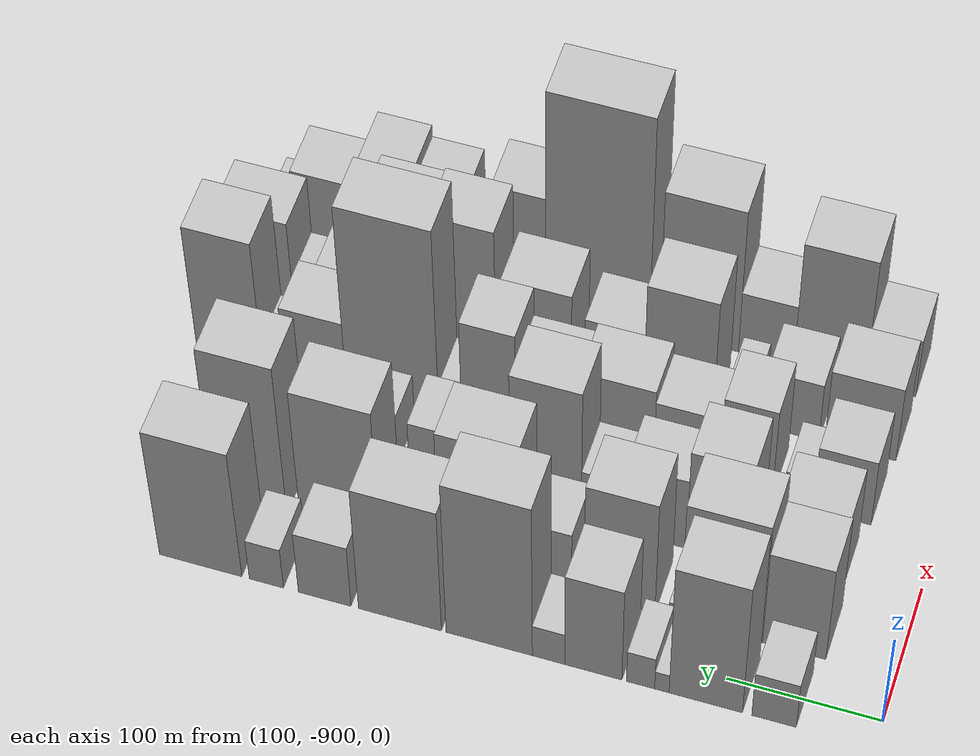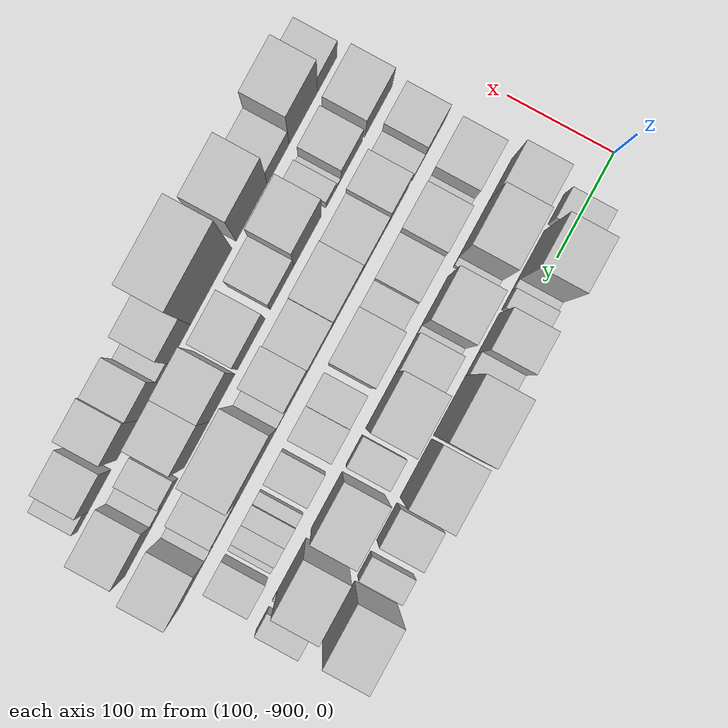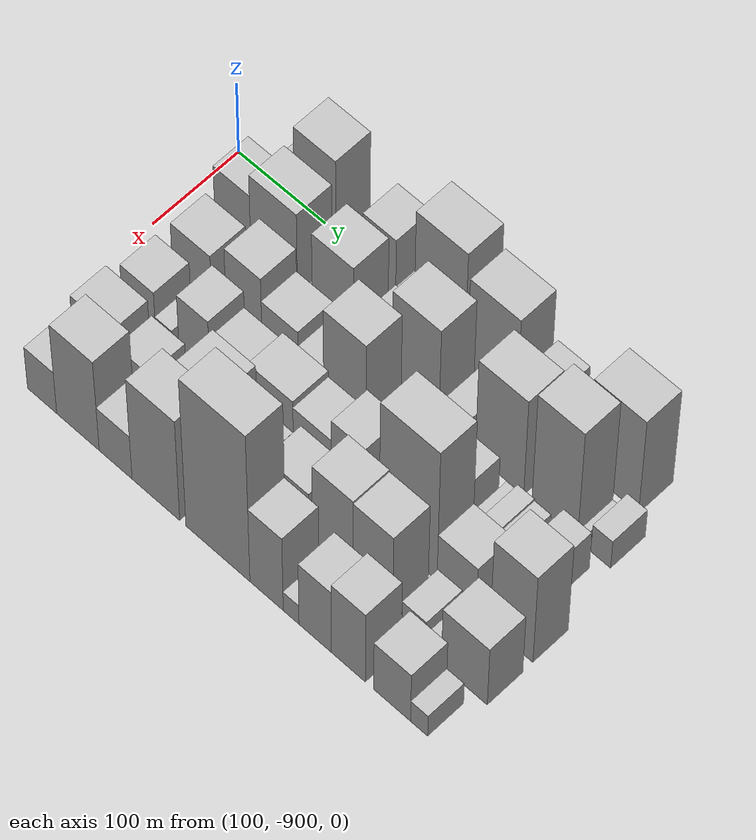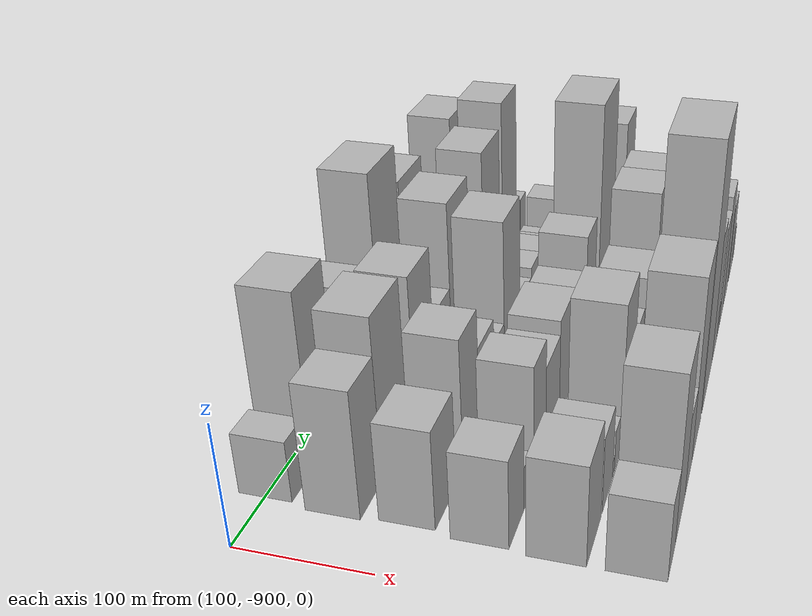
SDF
<sdf version="1.6">
 <world name="default">
  <model name="building_1">
   <static>1</static>
   <pose>100.0000 -835.7640 0 0.000000 0.000000 0.000000</pose>
   <link name="link">
    <pose>0 0 25.50 0 0 0</pose>
    <collision name="collision"><geometry><box><size>40.0000 28.4719 51.0000</size></box></geometry></collision>
    <visual name="visual">
     <cast_shadows>0</cast_shadows>
     <geometry><box><size>40.0000 28.4719 51.0000</size></box></geometry>
     <material>
      <script>
       <uri>model://HANNAS_wall/materials/scripts</uri>
       <uri>model://HANNAS_wall/materials/textures</uri>
       <name>vrc/HANNAS_wall</name>
      </script>
     </material>
    </visual>
   </link>
  </model>
  <model name="building_2">
   <static>1</static>
   <pose>100.0000 -791.8848 0 0.000000 0.000000 0.000000</pose>
   <link name="link">
    <pose>0 0 73.50 0 0 0</pose>
    <collision name="collision"><geometry><box><size>40.0000 47.2866 147.0000</size></box></geometry></collision>
    <visual name="visual">
     <cast_shadows>0</cast_shadows>
     <geometry><box><size>40.0000 47.2866 147.0000</size></box></geometry>
     <material>
      <script>
       <uri>model://HANNAS_wall/materials/scripts</uri>
       <uri>model://HANNAS_wall/materials/textures</uri>
       <name>vrc/HANNAS_wall</name>
      </script>
     </material>
    </visual>
   </link>
  </model>
  <model name="building_3">
   <static>1</static>
   <pose>100.0000 -763.5734 0 0.000000 0.000000 0.000000</pose>
   <link name="link">
    <pose>0 0 10.50 0 0 0</pose>
    <collision name="collision"><geometry><box><size>40.0000 9.3361 21.0000</size></box></geometry></collision>
    <visual name="visual">
     <cast_shadows>0</cast_shadows>
     <geometry><box><size>40.0000 9.3361 21.0000</size></box></geometry>
     <material>
      <script>
       <uri>model://HANNAS_wall/materials/scripts</uri>
       <uri>model://HANNAS_wall/materials/textures</uri>
       <name>vrc/HANNAS_wall</name>
      </script>
     </material>
    </visual>
   </link>
  </model>
  <model name="building_4">
   <static>1</static>
   <pose>100.0000 -749.7847 0 0.000000 0.000000 0.000000</pose>
   <link name="link">
    <pose>0 0 18.00 0 0 0</pose>
    <collision name="collision"><geometry><box><size>40.0000 18.2413 36.0000</size></box></geometry></collision>
    <visual name="visual">
     <cast_shadows>0</cast_shadows>
     <geometry><box><size>40.0000 18.2413 36.0000</size></box></geometry>
     <material>
      <script>
       <uri>model://HANNAS_wall/materials/scripts</uri>
       <uri>model://HANNAS_wall/materials/textures</uri>
       <name>vrc/HANNAS_wall</name>
      </script>
     </material>
    </visual>
   </link>
  </model>
  <model name="building_5">
   <static>1</static>
   <pose>100.0000 -719.0016 0 0.000000 0.000000 0.000000</pose>
   <link name="link">
    <pose>0 0 52.50 0 0 0</pose>
    <collision name="collision"><geometry><box><size>40.0000 37.3249 105.0000</size></box></geometry></collision>
    <visual name="visual">
     <cast_shadows>0</cast_shadows>
     <geometry><box><size>40.0000 37.3249 105.0000</size></box></geometry>
     <material>
      <script>
       <uri>model://HANNAS_wall/materials/scripts</uri>
       <uri>model://HANNAS_wall/materials/textures</uri>
       <name>vrc/HANNAS_wall</name>
      </script>
     </material>
    </visual>
   </link>
  </model>
  <model name="building_6">
   <static>1</static>
   <pose>100.0000 -689.7990 0 0.000000 0.000000 0.000000</pose>
   <link name="link">
    <pose>0 0 18.00 0 0 0</pose>
    <collision name="collision"><geometry><box><size>40.0000 21.0802 36.0000</size></box></geometry></collision>
    <visual name="visual">
     <cast_shadows>0</cast_shadows>
     <geometry><box><size>40.0000 21.0802 36.0000</size></box></geometry>
     <material>
      <script>
       <uri>model://HANNAS_wall/materials/scripts</uri>
       <uri>model://HANNAS_wall/materials/textures</uri>
       <name>vrc/HANNAS_wall</name>
      </script>
     </material>
    </visual>
   </link>
  </model>
  <model name="building_7">
   <static>1</static>
   <pose>100.0000 -650.8711 0 0.000000 0.000000 0.000000</pose>
   <link name="link">
    <pose>0 0 85.50 0 0 0</pose>
    <collision name="collision"><geometry><box><size>40.0000 56.7756 171.0000</size></box></geometry></collision>
    <visual name="visual">
     <cast_shadows>0</cast_shadows>
     <geometry><box><size>40.0000 56.7756 171.0000</size></box></geometry>
     <material>
      <script>
       <uri>model://HANNAS_wall/materials/scripts</uri>
       <uri>model://HANNAS_wall/materials/textures</uri>
       <name>vrc/HANNAS_wall</name>
      </script>
     </material>
    </visual>
   </link>
  </model>
  <model name="building_8">
   <static>1</static>
   <pose>100.0000 -591.9886 0 0.000000 0.000000 0.000000</pose>
   <link name="link">
    <pose>0 0 69.00 0 0 0</pose>
    <collision name="collision"><geometry><box><size>40.0000 54.9893 138.0000</size></box></geometry></collision>
    <visual name="visual">
     <cast_shadows>0</cast_shadows>
     <geometry><box><size>40.0000 54.9893 138.0000</size></box></geometry>
     <material>
      <script>
       <uri>model://HANNAS_wall/materials/scripts</uri>
       <uri>model://HANNAS_wall/materials/textures</uri>
       <name>vrc/HANNAS_wall</name>
      </script>
     </material>
    </visual>
   </link>
  </model>
  <model name="building_9">
   <static>1</static>
   <pose>100.0000 -541.9418 0 0.000000 0.000000 0.000000</pose>
   <link name="link">
    <pose>0 0 34.50 0 0 0</pose>
    <collision name="collision"><geometry><box><size>40.0000 35.1044 69.0000</size></box></geometry></collision>
    <visual name="visual">
     <cast_shadows>0</cast_shadows>
     <geometry><box><size>40.0000 35.1044 69.0000</size></box></geometry>
     <material>
      <script>
       <uri>model://HANNAS_wall/materials/scripts</uri>
       <uri>model://HANNAS_wall/materials/textures</uri>
       <name>vrc/HANNAS_wall</name>
      </script>
     </material>
    </visual>
   </link>
  </model>
  <model name="building_10">
   <static>1</static>
   <pose>100.0000 -502.9221 0 0.000000 0.000000 0.000000</pose>
   <link name="link">
    <pose>0 0 22.50 0 0 0</pose>
    <collision name="collision"><geometry><box><size>40.0000 22.9349 45.0000</size></box></geometry></collision>
    <visual name="visual">
     <cast_shadows>0</cast_shadows>
     <geometry><box><size>40.0000 22.9349 45.0000</size></box></geometry>
     <material>
      <script>
       <uri>model://HANNAS_wall/materials/scripts</uri>
       <uri>model://HANNAS_wall/materials/textures</uri>
       <name>vrc/HANNAS_wall</name>
      </script>
     </material>
    </visual>
   </link>
  </model>
  <model name="building_11">
   <static>1</static>
   <pose>100.0000 -458.6440 0 0.000000 0.000000 0.000000</pose>
   <link name="link">
    <pose>0 0 70.50 0 0 0</pose>
    <collision name="collision"><geometry><box><size>40.0000 55.6212 141.0000</size></box></geometry></collision>
    <visual name="visual">
     <cast_shadows>0</cast_shadows>
     <geometry><box><size>40.0000 55.6212 141.0000</size></box></geometry>
     <material>
      <script>
       <uri>model://HANNAS_wall/materials/scripts</uri>
       <uri>model://HANNAS_wall/materials/textures</uri>
       <name>vrc/HANNAS_wall</name>
      </script>
     </material>
    </visual>
   </link>
  </model>
  <model name="building_50">
   <static>1</static>
   <pose>152.0000 -834.4428 0 0.000000 0.000000 0.000000</pose>
   <link name="link">
    <pose>0 0 52.50 0 0 0</pose>
    <collision name="collision"><geometry><box><size>40.0000 41.1144 105.0000</size></box></geometry></collision>
    <visual name="visual">
     <cast_shadows>0</cast_shadows>
     <geometry><box><size>40.0000 41.1144 105.0000</size></box></geometry>
     <material>
      <script>
       <uri>model://HANNAS_wall/materials/scripts</uri>
       <uri>model://HANNAS_wall/materials/textures</uri>
       <name>vrc/HANNAS_wall</name>
      </script>
     </material>
    </visual>
   </link>
  </model>
  <model name="building_51">
   <static>1</static>
   <pose>152.0000 -787.2116 0 0.000000 0.000000 0.000000</pose>
   <link name="link">
    <pose>0 0 67.50 0 0 0</pose>
    <collision name="collision"><geometry><box><size>40.0000 53.3479 135.0000</size></box></geometry></collision>
    <visual name="visual">
     <cast_shadows>0</cast_shadows>
     <geometry><box><size>40.0000 53.3479 135.0000</size></box></geometry>
     <material>
      <script>
       <uri>model://HANNAS_wall/materials/scripts</uri>
       <uri>model://HANNAS_wall/materials/textures</uri>
       <name>vrc/HANNAS_wall</name>
      </script>
     </material>
    </visual>
   </link>
  </model>
  <model name="building_52">
   <static>1</static>
   <pose>152.0000 -756.6279 0 0.000000 0.000000 0.000000</pose>
   <link name="link">
    <pose>0 0 9.00 0 0 0</pose>
    <collision name="collision"><geometry><box><size>40.0000 7.8196 18.0000</size></box></geometry></collision>
    <visual name="visual">
     <cast_shadows>0</cast_shadows>
     <geometry><box><size>40.0000 7.8196 18.0000</size></box></geometry>
     <material>
      <script>
       <uri>model://HANNAS_wall/materials/scripts</uri>
       <uri>model://HANNAS_wall/materials/textures</uri>
       <name>vrc/HANNAS_wall</name>
      </script>
     </material>
    </visual>
   </link>
  </model>
  <model name="building_53">
   <static>1</static>
   <pose>152.0000 -720.3951 0 0.000000 0.000000 0.000000</pose>
   <link name="link">
    <pose>0 0 63.00 0 0 0</pose>
    <collision name="collision"><geometry><box><size>40.0000 46.6460 126.0000</size></box></geometry></collision>
    <visual name="visual">
     <cast_shadows>0</cast_shadows>
     <geometry><box><size>40.0000 46.6460 126.0000</size></box></geometry>
     <material>
      <script>
       <uri>model://HANNAS_wall/materials/scripts</uri>
       <uri>model://HANNAS_wall/materials/textures</uri>
       <name>vrc/HANNAS_wall</name>
      </script>
     </material>
    </visual>
   </link>
  </model>
  <model name="building_54">
   <static>1</static>
   <pose>152.0000 -692.8880 0 0.000000 0.000000 0.000000</pose>
   <link name="link">
    <pose>0 0 9.00 0 0 0</pose>
    <collision name="collision"><geometry><box><size>40.0000 8.3680 18.0000</size></box></geometry></collision>
    <visual name="visual">
     <cast_shadows>0</cast_shadows>
     <geometry><box><size>40.0000 8.3680 18.0000</size></box></geometry>
     <material>
      <script>
       <uri>model://HANNAS_wall/materials/scripts</uri>
       <uri>model://HANNAS_wall/materials/textures</uri>
       <name>vrc/HANNAS_wall</name>
      </script>
     </material>
    </visual>
   </link>
  </model>
  <model name="building_55">
   <static>1</static>
   <pose>152.0000 -671.2183 0 0.000000 0.000000 0.000000</pose>
   <link name="link">
    <pose>0 0 33.00 0 0 0</pose>
    <collision name="collision"><geometry><box><size>40.0000 34.9714 66.0000</size></box></geometry></collision>
    <visual name="visual">
     <cast_shadows>0</cast_shadows>
     <geometry><box><size>40.0000 34.9714 66.0000</size></box></geometry>
     <material>
      <script>
       <uri>model://HANNAS_wall/materials/scripts</uri>
       <uri>model://HANNAS_wall/materials/textures</uri>
       <name>vrc/HANNAS_wall</name>
      </script>
     </material>
    </visual>
   </link>
  </model>
  <model name="building_56">
   <static>1</static>
   <pose>152.0000 -627.3298 0 0.000000 0.000000 0.000000</pose>
   <link name="link">
    <pose>0 0 70.50 0 0 0</pose>
    <collision name="collision"><geometry><box><size>40.0000 52.8056 141.0000</size></box></geometry></collision>
    <visual name="visual">
     <cast_shadows>0</cast_shadows>
     <geometry><box><size>40.0000 52.8056 141.0000</size></box></geometry>
     <material>
      <script>
       <uri>model://HANNAS_wall/materials/scripts</uri>
       <uri>model://HANNAS_wall/materials/textures</uri>
       <name>vrc/HANNAS_wall</name>
      </script>
     </material>
    </visual>
   </link>
  </model>
  <model name="building_57">
   <static>1</static>
   <pose>152.0000 -580.7093 0 0.000000 0.000000 0.000000</pose>
   <link name="link">
    <pose>0 0 24.00 0 0 0</pose>
    <collision name="collision"><geometry><box><size>40.0000 28.4353 48.0000</size></box></geometry></collision>
    <visual name="visual">
     <cast_shadows>0</cast_shadows>
     <geometry><box><size>40.0000 28.4353 48.0000</size></box></geometry>
     <material>
      <script>
       <uri>model://HANNAS_wall/materials/scripts</uri>
       <uri>model://HANNAS_wall/materials/textures</uri>
       <name>vrc/HANNAS_wall</name>
      </script>
     </material>
    </visual>
   </link>
  </model>
  <model name="building_58">
   <static>1</static>
   <pose>152.0000 -533.8297 0 0.000000 0.000000 0.000000</pose>
   <link name="link">
    <pose>0 0 72.00 0 0 0</pose>
    <collision name="collision"><geometry><box><size>40.0000 53.3240 144.0000</size></box></geometry></collision>
    <visual name="visual">
     <cast_shadows>0</cast_shadows>
     <geometry><box><size>40.0000 53.3240 144.0000</size></box></geometry>
     <material>
      <script>
       <uri>model://HANNAS_wall/materials/scripts</uri>
       <uri>model://HANNAS_wall/materials/textures</uri>
       <name>vrc/HANNAS_wall</name>
      </script>
     </material>
    </visual>
   </link>
  </model>
  <model name="building_59">
   <static>1</static>
   <pose>152.0000 -473.2802 0 0.000000 0.000000 0.000000</pose>
   <link name="link">
    <pose>0 0 82.50 0 0 0</pose>
    <collision name="collision"><geometry><box><size>40.0000 49.7751 165.0000</size></box></geometry></collision>
    <visual name="visual">
     <cast_shadows>0</cast_shadows>
     <geometry><box><size>40.0000 49.7751 165.0000</size></box></geometry>
     <material>
      <script>
       <uri>model://HANNAS_wall/materials/scripts</uri>
       <uri>model://HANNAS_wall/materials/textures</uri>
       <name>vrc/HANNAS_wall</name>
      </script>
     </material>
    </visual>
   </link>
  </model>
  <model name="building_60">
   <static>1</static>
   <pose>152.0000 -444.7053 0 0.000000 0.000000 0.000000</pose>
   <link name="link">
    <pose>0 0 7.50 0 0 0</pose>
    <collision name="collision"><geometry><box><size>40.0000 7.3747 15.0000</size></box></geometry></collision>
    <visual name="visual">
     <cast_shadows>0</cast_shadows>
     <geometry><box><size>40.0000 7.3747 15.0000</size></box></geometry>
     <material>
      <script>
       <uri>model://HANNAS_wall/materials/scripts</uri>
       <uri>model://HANNAS_wall/materials/textures</uri>
       <name>vrc/HANNAS_wall</name>
      </script>
     </material>
    </visual>
   </link>
  </model>
  <model name="building_61">
   <static>1</static>
   <pose>152.0000 -423.2872 0 0.000000 0.000000 0.000000</pose>
   <link name="link">
    <pose>0 0 21.00 0 0 0</pose>
    <collision name="collision"><geometry><box><size>40.0000 21.4614 42.0000</size></box></geometry></collision>
    <visual name="visual">
     <cast_shadows>0</cast_shadows>
     <geometry><box><size>40.0000 21.4614 42.0000</size></box></geometry>
     <material>
      <script>
       <uri>model://HANNAS_wall/materials/scripts</uri>
       <uri>model://HANNAS_wall/materials/textures</uri>
       <name>vrc/HANNAS_wall</name>
      </script>
     </material>
    </visual>
   </link>
  </model>
  <model name="building_101">
   <static>1</static>
   <pose>204.0000 -829.4311 0 0.000000 0.000000 0.000000</pose>
   <link name="link">
    <pose>0 0 40.50 0 0 0</pose>
    <collision name="collision"><geometry><box><size>40.0000 45.1378 81.0000</size></box></geometry></collision>
    <visual name="visual">
     <cast_shadows>0</cast_shadows>
     <geometry><box><size>40.0000 45.1378 81.0000</size></box></geometry>
     <material>
      <script>
       <uri>model://HANNAS_wall/materials/scripts</uri>
       <uri>model://HANNAS_wall/materials/textures</uri>
       <name>vrc/HANNAS_wall</name>
      </script>
     </material>
    </visual>
   </link>
  </model>
  <model name="building_102">
   <static>1</static>
   <pose>204.0000 -798.4260 0 0.000000 0.000000 0.000000</pose>
   <link name="link">
    <pose>0 0 15.00 0 0 0</pose>
    <collision name="collision"><geometry><box><size>40.0000 16.8722 30.0000</size></box></geometry></collision>
    <visual name="visual">
     <cast_shadows>0</cast_shadows>
     <geometry><box><size>40.0000 16.8722 30.0000</size></box></geometry>
     <material>
      <script>
       <uri>model://HANNAS_wall/materials/scripts</uri>
       <uri>model://HANNAS_wall/materials/textures</uri>
       <name>vrc/HANNAS_wall</name>
      </script>
     </material>
    </visual>
   </link>
  </model>
  <model name="building_103">
   <static>1</static>
   <pose>204.0000 -769.5435 0 0.000000 0.000000 0.000000</pose>
   <link name="link">
    <pose>0 0 55.50 0 0 0</pose>
    <collision name="collision"><geometry><box><size>40.0000 40.8929 111.0000</size></box></geometry></collision>
    <visual name="visual">
     <cast_shadows>0</cast_shadows>
     <geometry><box><size>40.0000 40.8929 111.0000</size></box></geometry>
     <material>
      <script>
       <uri>model://HANNAS_wall/materials/scripts</uri>
       <uri>model://HANNAS_wall/materials/textures</uri>
       <name>vrc/HANNAS_wall</name>
      </script>
     </material>
    </visual>
   </link>
  </model>
  <model name="building_104">
   <static>1</static>
   <pose>204.0000 -728.5510 0 0.000000 0.000000 0.000000</pose>
   <link name="link">
    <pose>0 0 39.00 0 0 0</pose>
    <collision name="collision"><geometry><box><size>40.0000 41.0920 78.0000</size></box></geometry></collision>
    <visual name="visual">
     <cast_shadows>0</cast_shadows>
     <geometry><box><size>40.0000 41.0920 78.0000</size></box></geometry>
     <material>
      <script>
       <uri>model://HANNAS_wall/materials/scripts</uri>
       <uri>model://HANNAS_wall/materials/textures</uri>
       <name>vrc/HANNAS_wall</name>
      </script>
     </material>
    </visual>
   </link>
  </model>
  <model name="building_105">
   <static>1</static>
   <pose>204.0000 -693.6044 0 0.000000 0.000000 0.000000</pose>
   <link name="link">
    <pose>0 0 28.50 0 0 0</pose>
    <collision name="collision"><geometry><box><size>40.0000 28.8011 57.0000</size></box></geometry></collision>
    <visual name="visual">
     <cast_shadows>0</cast_shadows>
     <geometry><box><size>40.0000 28.8011 57.0000</size></box></geometry>
     <material>
      <script>
       <uri>model://HANNAS_wall/materials/scripts</uri>
       <uri>model://HANNAS_wall/materials/textures</uri>
       <name>vrc/HANNAS_wall</name>
      </script>
     </material>
    </visual>
   </link>
  </model>
  <model name="building_106">
   <static>1</static>
   <pose>204.0000 -655.5282 0 0.000000 0.000000 0.000000</pose>
   <link name="link">
    <pose>0 0 72.00 0 0 0</pose>
    <collision name="collision"><geometry><box><size>40.0000 47.3514 144.0000</size></box></geometry></collision>
    <visual name="visual">
     <cast_shadows>0</cast_shadows>
     <geometry><box><size>40.0000 47.3514 144.0000</size></box></geometry>
     <material>
      <script>
       <uri>model://HANNAS_wall/materials/scripts</uri>
       <uri>model://HANNAS_wall/materials/textures</uri>
       <name>vrc/HANNAS_wall</name>
      </script>
     </material>
    </visual>
   </link>
  </model>
  <model name="building_107">
   <static>1</static>
   <pose>204.0000 -609.6606 0 0.000000 0.000000 0.000000</pose>
   <link name="link">
    <pose>0 0 25.50 0 0 0</pose>
    <collision name="collision"><geometry><box><size>40.0000 30.3838 51.0000</size></box></geometry></collision>
    <visual name="visual">
     <cast_shadows>0</cast_shadows>
     <geometry><box><size>40.0000 30.3838 51.0000</size></box></geometry>
     <material>
      <script>
       <uri>model://HANNAS_wall/materials/scripts</uri>
       <uri>model://HANNAS_wall/materials/textures</uri>
       <name>vrc/HANNAS_wall</name>
      </script>
     </material>
    </visual>
   </link>
  </model>
  <model name="building_108">
   <static>1</static>
   <pose>204.0000 -579.0292 0 0.000000 0.000000 0.000000</pose>
   <link name="link">
    <pose>0 0 30.00 0 0 0</pose>
    <collision name="collision"><geometry><box><size>40.0000 30.8792 60.0000</size></box></geometry></collision>
    <visual name="visual">
     <cast_shadows>0</cast_shadows>
     <geometry><box><size>40.0000 30.8792 60.0000</size></box></geometry>
     <material>
      <script>
       <uri>model://HANNAS_wall/materials/scripts</uri>
       <uri>model://HANNAS_wall/materials/textures</uri>
       <name>vrc/HANNAS_wall</name>
      </script>
     </material>
    </visual>
   </link>
  </model>
  <model name="building_109">
   <static>1</static>
   <pose>204.0000 -538.4942 0 0.000000 0.000000 0.000000</pose>
   <link name="link">
    <pose>0 0 27.00 0 0 0</pose>
    <collision name="collision"><geometry><box><size>40.0000 30.1908 54.0000</size></box></geometry></collision>
    <visual name="visual">
     <cast_shadows>0</cast_shadows>
     <geometry><box><size>40.0000 30.1908 54.0000</size></box></geometry>
     <material>
      <script>
       <uri>model://HANNAS_wall/materials/scripts</uri>
       <uri>model://HANNAS_wall/materials/textures</uri>
       <name>vrc/HANNAS_wall</name>
      </script>
     </material>
    </visual>
   </link>
  </model>
  <model name="building_110">
   <static>1</static>
   <pose>204.0000 -509.4311 0 0.000000 0.000000 0.000000</pose>
   <link name="link">
    <pose>0 0 13.50 0 0 0</pose>
    <collision name="collision"><geometry><box><size>40.0000 11.9353 27.0000</size></box></geometry></collision>
    <visual name="visual">
     <cast_shadows>0</cast_shadows>
     <geometry><box><size>40.0000 11.9353 27.0000</size></box></geometry>
     <material>
      <script>
       <uri>model://HANNAS_wall/materials/scripts</uri>
       <uri>model://HANNAS_wall/materials/textures</uri>
       <name>vrc/HANNAS_wall</name>
      </script>
     </material>
    </visual>
   </link>
  </model>
  <model name="building_111">
   <static>1</static>
   <pose>204.0000 -494.2923 0 0.000000 0.000000 0.000000</pose>
   <link name="link">
    <pose>0 0 18.00 0 0 0</pose>
    <collision name="collision"><geometry><box><size>40.0000 18.3423 36.0000</size></box></geometry></collision>
    <visual name="visual">
     <cast_shadows>0</cast_shadows>
     <geometry><box><size>40.0000 18.3423 36.0000</size></box></geometry>
     <material>
      <script>
       <uri>model://HANNAS_wall/materials/scripts</uri>
       <uri>model://HANNAS_wall/materials/textures</uri>
       <name>vrc/HANNAS_wall</name>
      </script>
     </material>
    </visual>
   </link>
  </model>
  <model name="building_112">
   <static>1</static>
   <pose>204.0000 -476.1078 0 0.000000 0.000000 0.000000</pose>
   <link name="link">
    <pose>0 0 16.50 0 0 0</pose>
    <collision name="collision"><geometry><box><size>40.0000 18.0266 33.0000</size></box></geometry></collision>
    <visual name="visual">
     <cast_shadows>0</cast_shadows>
     <geometry><box><size>40.0000 18.0266 33.0000</size></box></geometry>
     <material>
      <script>
       <uri>model://HANNAS_wall/materials/scripts</uri>
       <uri>model://HANNAS_wall/materials/textures</uri>
       <name>vrc/HANNAS_wall</name>
      </script>
     </material>
    </visual>
   </link>
  </model>
  <model name="building_113">
   <static>1</static>
   <pose>204.0000 -463.3585 0 0.000000 0.000000 0.000000</pose>
   <link name="link">
    <pose>0 0 7.50 0 0 0</pose>
    <collision name="collision"><geometry><box><size>40.0000 7.4720 15.0000</size></box></geometry></collision>
    <visual name="visual">
     <cast_shadows>0</cast_shadows>
     <geometry><box><size>40.0000 7.4720 15.0000</size></box></geometry>
     <material>
      <script>
       <uri>model://HANNAS_wall/materials/scripts</uri>
       <uri>model://HANNAS_wall/materials/textures</uri>
       <name>vrc/HANNAS_wall</name>
      </script>
     </material>
    </visual>
   </link>
  </model>
  <model name="building_114">
   <static>1</static>
   <pose>204.0000 -439.5494 0 0.000000 0.000000 0.000000</pose>
   <link name="link">
    <pose>0 0 28.50 0 0 0</pose>
    <collision name="collision"><geometry><box><size>40.0000 30.1462 57.0000</size></box></geometry></collision>
    <visual name="visual">
     <cast_shadows>0</cast_shadows>
     <geometry><box><size>40.0000 30.1462 57.0000</size></box></geometry>
     <material>
      <script>
       <uri>model://HANNAS_wall/materials/scripts</uri>
       <uri>model://HANNAS_wall/materials/textures</uri>
       <name>vrc/HANNAS_wall</name>
      </script>
     </material>
    </visual>
   </link>
  </model>
  <model name="building_150">
   <static>1</static>
   <pose>256.0000 -837.7913 0 0.000000 0.000000 0.000000</pose>
   <link name="link">
    <pose>0 0 36.00 0 0 0</pose>
    <collision name="collision"><geometry><box><size>40.0000 38.4174 72.0000</size></box></geometry></collision>
    <visual name="visual">
     <cast_shadows>0</cast_shadows>
     <geometry><box><size>40.0000 38.4174 72.0000</size></box></geometry>
     <material>
      <script>
       <uri>model://HANNAS_wall/materials/scripts</uri>
       <uri>model://HANNAS_wall/materials/textures</uri>
       <name>vrc/HANNAS_wall</name>
      </script>
     </material>
    </visual>
   </link>
  </model>
  <model name="building_151">
   <static>1</static>
   <pose>256.0000 -808.9455 0 0.000000 0.000000 0.000000</pose>
   <link name="link">
    <pose>0 0 18.00 0 0 0</pose>
    <collision name="collision"><geometry><box><size>40.0000 19.2741 36.0000</size></box></geometry></collision>
    <visual name="visual">
     <cast_shadows>0</cast_shadows>
     <geometry><box><size>40.0000 19.2741 36.0000</size></box></geometry>
     <material>
      <script>
       <uri>model://HANNAS_wall/materials/scripts</uri>
       <uri>model://HANNAS_wall/materials/textures</uri>
       <name>vrc/HANNAS_wall</name>
      </script>
     </material>
    </visual>
   </link>
  </model>
  <model name="building_152">
   <static>1</static>
   <pose>256.0000 -773.6890 0 0.000000 0.000000 0.000000</pose>
   <link name="link">
    <pose>0 0 49.50 0 0 0</pose>
    <collision name="collision"><geometry><box><size>40.0000 35.2390 99.0000</size></box></geometry></collision>
    <visual name="visual">
     <cast_shadows>0</cast_shadows>
     <geometry><box><size>40.0000 35.2390 99.0000</size></box></geometry>
     <material>
      <script>
       <uri>model://HANNAS_wall/materials/scripts</uri>
       <uri>model://HANNAS_wall/materials/textures</uri>
       <name>vrc/HANNAS_wall</name>
      </script>
     </material>
    </visual>
   </link>
  </model>
  <model name="building_153">
   <static>1</static>
   <pose>256.0000 -734.0870 0 0.000000 0.000000 0.000000</pose>
   <link name="link">
    <pose>0 0 37.50 0 0 0</pose>
    <collision name="collision"><geometry><box><size>40.0000 43.9650 75.0000</size></box></geometry></collision>
    <visual name="visual">
     <cast_shadows>0</cast_shadows>
     <geometry><box><size>40.0000 43.9650 75.0000</size></box></geometry>
     <material>
      <script>
       <uri>model://HANNAS_wall/materials/scripts</uri>
       <uri>model://HANNAS_wall/materials/textures</uri>
       <name>vrc/HANNAS_wall</name>
      </script>
     </material>
    </visual>
   </link>
  </model>
  <model name="building_154">
   <static>1</static>
   <pose>256.0000 -686.9102 0 0.000000 0.000000 0.000000</pose>
   <link name="link">
    <pose>0 0 43.50 0 0 0</pose>
    <collision name="collision"><geometry><box><size>40.0000 50.3886 87.0000</size></box></geometry></collision>
    <visual name="visual">
     <cast_shadows>0</cast_shadows>
     <geometry><box><size>40.0000 50.3886 87.0000</size></box></geometry>
     <material>
      <script>
       <uri>model://HANNAS_wall/materials/scripts</uri>
       <uri>model://HANNAS_wall/materials/textures</uri>
       <name>vrc/HANNAS_wall</name>
      </script>
     </material>
    </visual>
   </link>
  </model>
  <model name="building_155">
   <static>1</static>
   <pose>256.0000 -640.3605 0 0.000000 0.000000 0.000000</pose>
   <link name="link">
    <pose>0 0 39.00 0 0 0</pose>
    <collision name="collision"><geometry><box><size>40.0000 42.7108 78.0000</size></box></geometry></collision>
    <visual name="visual">
     <cast_shadows>0</cast_shadows>
     <geometry><box><size>40.0000 42.7108 78.0000</size></box></geometry>
     <material>
      <script>
       <uri>model://HANNAS_wall/materials/scripts</uri>
       <uri>model://HANNAS_wall/materials/textures</uri>
       <name>vrc/HANNAS_wall</name>
      </script>
     </material>
    </visual>
   </link>
  </model>
  <model name="building_156">
   <static>1</static>
   <pose>256.0000 -600.4456 0 0.000000 0.000000 0.000000</pose>
   <link name="link">
    <pose>0 0 54.00 0 0 0</pose>
    <collision name="collision"><geometry><box><size>40.0000 37.1189 108.0000</size></box></geometry></collision>
    <visual name="visual">
     <cast_shadows>0</cast_shadows>
     <geometry><box><size>40.0000 37.1189 108.0000</size></box></geometry>
     <material>
      <script>
       <uri>model://HANNAS_wall/materials/scripts</uri>
       <uri>model://HANNAS_wall/materials/textures</uri>
       <name>vrc/HANNAS_wall</name>
      </script>
     </material>
    </visual>
   </link>
  </model>
  <model name="building_157">
   <static>1</static>
   <pose>256.0000 -574.0179 0 0.000000 0.000000 0.000000</pose>
   <link name="link">
    <pose>0 0 15.00 0 0 0</pose>
    <collision name="collision"><geometry><box><size>40.0000 15.7366 30.0000</size></box></geometry></collision>
    <visual name="visual">
     <cast_shadows>0</cast_shadows>
     <geometry><box><size>40.0000 15.7366 30.0000</size></box></geometry>
     <material>
      <script>
       <uri>model://HANNAS_wall/materials/scripts</uri>
       <uri>model://HANNAS_wall/materials/textures</uri>
       <name>vrc/HANNAS_wall</name>
      </script>
     </material>
    </visual>
   </link>
  </model>
  <model name="building_158">
   <static>1</static>
   <pose>256.0000 -534.2681 0 0.000000 0.000000 0.000000</pose>
   <link name="link">
    <pose>0 0 99.00 0 0 0</pose>
    <collision name="collision"><geometry><box><size>40.0000 63.7629 198.0000</size></box></geometry></collision>
    <visual name="visual">
     <cast_shadows>0</cast_shadows>
     <geometry><box><size>40.0000 63.7629 198.0000</size></box></geometry>
     <material>
      <script>
       <uri>model://HANNAS_wall/materials/scripts</uri>
       <uri>model://HANNAS_wall/materials/textures</uri>
       <name>vrc/HANNAS_wall</name>
      </script>
     </material>
    </visual>
   </link>
  </model>
  <model name="building_159">
   <static>1</static>
   <pose>256.0000 -480.9366 0 0.000000 0.000000 0.000000</pose>
   <link name="link">
    <pose>0 0 36.00 0 0 0</pose>
    <collision name="collision"><geometry><box><size>40.0000 42.9000 72.0000</size></box></geometry></collision>
    <visual name="visual">
     <cast_shadows>0</cast_shadows>
     <geometry><box><size>40.0000 42.9000 72.0000</size></box></geometry>
     <material>
      <script>
       <uri>model://HANNAS_wall/materials/scripts</uri>
       <uri>model://HANNAS_wall/materials/textures</uri>
       <name>vrc/HANNAS_wall</name>
      </script>
     </material>
    </visual>
   </link>
  </model>
  <model name="building_160">
   <static>1</static>
   <pose>256.0000 -449.9239 0 0.000000 0.000000 0.000000</pose>
   <link name="link">
    <pose>0 0 13.50 0 0 0</pose>
    <collision name="collision"><geometry><box><size>40.0000 11.1255 27.0000</size></box></geometry></collision>
    <visual name="visual">
     <cast_shadows>0</cast_shadows>
     <geometry><box><size>40.0000 11.1255 27.0000</size></box></geometry>
     <material>
      <script>
       <uri>model://HANNAS_wall/materials/scripts</uri>
       <uri>model://HANNAS_wall/materials/textures</uri>
       <name>vrc/HANNAS_wall</name>
      </script>
     </material>
    </visual>
   </link>
  </model>
  <model name="building_161">
   <static>1</static>
   <pose>256.0000 -421.3297 0 0.000000 0.000000 0.000000</pose>
   <link name="link">
    <pose>0 0 67.50 0 0 0</pose>
    <collision name="collision"><geometry><box><size>40.0000 46.0630 135.0000</size></box></geometry></collision>
    <visual name="visual">
     <cast_shadows>0</cast_shadows>
     <geometry><box><size>40.0000 46.0630 135.0000</size></box></geometry>
     <material>
      <script>
       <uri>model://HANNAS_wall/materials/scripts</uri>
       <uri>model://HANNAS_wall/materials/textures</uri>
       <name>vrc/HANNAS_wall</name>
      </script>
     </material>
    </visual>
   </link>
  </model>
  <model name="building_192">
   <static>1</static>
   <pose>308.0000 -836.2312 0 0.000000 0.000000 0.000000</pose>
   <link name="link">
    <pose>0 0 40.50 0 0 0</pose>
    <collision name="collision"><geometry><box><size>40.0000 47.5377 81.0000</size></box></geometry></collision>
    <visual name="visual">
     <cast_shadows>0</cast_shadows>
     <geometry><box><size>40.0000 47.5377 81.0000</size></box></geometry>
     <material>
      <script>
       <uri>model://HANNAS_wall/materials/scripts</uri>
       <uri>model://HANNAS_wall/materials/textures</uri>
       <name>vrc/HANNAS_wall</name>
      </script>
     </material>
    </visual>
   </link>
  </model>
  <model name="building_193">
   <static>1</static>
   <pose>308.0000 -789.6467 0 0.000000 0.000000 0.000000</pose>
   <link name="link">
    <pose>0 0 31.50 0 0 0</pose>
    <collision name="collision"><geometry><box><size>40.0000 37.6313 63.0000</size></box></geometry></collision>
    <visual name="visual">
     <cast_shadows>0</cast_shadows>
     <geometry><box><size>40.0000 37.6313 63.0000</size></box></geometry>
     <material>
      <script>
       <uri>model://HANNAS_wall/materials/scripts</uri>
       <uri>model://HANNAS_wall/materials/textures</uri>
       <name>vrc/HANNAS_wall</name>
      </script>
     </material>
    </visual>
   </link>
  </model>
  <model name="building_194">
   <static>1</static>
   <pose>308.0000 -767.2541 0 0.000000 0.000000 0.000000</pose>
   <link name="link">
    <pose>0 0 7.50 0 0 0</pose>
    <collision name="collision"><geometry><box><size>40.0000 7.1537 15.0000</size></box></geometry></collision>
    <visual name="visual">
     <cast_shadows>0</cast_shadows>
     <geometry><box><size>40.0000 7.1537 15.0000</size></box></geometry>
     <material>
      <script>
       <uri>model://HANNAS_wall/materials/scripts</uri>
       <uri>model://HANNAS_wall/materials/textures</uri>
       <name>vrc/HANNAS_wall</name>
      </script>
     </material>
    </visual>
   </link>
  </model>
  <model name="building_195">
   <static>1</static>
   <pose>308.0000 -754.5824 0 0.000000 0.000000 0.000000</pose>
   <link name="link">
    <pose>0 0 18.00 0 0 0</pose>
    <collision name="collision"><geometry><box><size>40.0000 18.1897 36.0000</size></box></geometry></collision>
    <visual name="visual">
     <cast_shadows>0</cast_shadows>
     <geometry><box><size>40.0000 18.1897 36.0000</size></box></geometry>
     <material>
      <script>
       <uri>model://HANNAS_wall/materials/scripts</uri>
       <uri>model://HANNAS_wall/materials/textures</uri>
       <name>vrc/HANNAS_wall</name>
      </script>
     </material>
    </visual>
   </link>
  </model>
  <model name="building_196">
   <static>1</static>
   <pose>308.0000 -713.7474 0 0.000000 0.000000 0.000000</pose>
   <link name="link">
    <pose>0 0 61.50 0 0 0</pose>
    <collision name="collision"><geometry><box><size>40.0000 47.4803 123.0000</size></box></geometry></collision>
    <visual name="visual">
     <cast_shadows>0</cast_shadows>
     <geometry><box><size>40.0000 47.4803 123.0000</size></box></geometry>
     <material>
      <script>
       <uri>model://HANNAS_wall/materials/scripts</uri>
       <uri>model://HANNAS_wall/materials/textures</uri>
       <name>vrc/HANNAS_wall</name>
      </script>
     </material>
    </visual>
   </link>
  </model>
  <model name="building_197">
   <static>1</static>
   <pose>308.0000 -669.7137 0 0.000000 0.000000 0.000000</pose>
   <link name="link">
    <pose>0 0 34.50 0 0 0</pose>
    <collision name="collision"><geometry><box><size>40.0000 40.5871 69.0000</size></box></geometry></collision>
    <visual name="visual">
     <cast_shadows>0</cast_shadows>
     <geometry><box><size>40.0000 40.5871 69.0000</size></box></geometry>
     <material>
      <script>
       <uri>model://HANNAS_wall/materials/scripts</uri>
       <uri>model://HANNAS_wall/materials/textures</uri>
       <name>vrc/HANNAS_wall</name>
      </script>
     </material>
    </visual>
   </link>
  </model>
  <model name="building_198">
   <static>1</static>
   <pose>308.0000 -616.5644 0 0.000000 0.000000 0.000000</pose>
   <link name="link">
    <pose>0 0 45.00 0 0 0</pose>
    <collision name="collision"><geometry><box><size>40.0000 47.7114 90.0000</size></box></geometry></collision>
    <visual name="visual">
     <cast_shadows>0</cast_shadows>
     <geometry><box><size>40.0000 47.7114 90.0000</size></box></geometry>
     <material>
      <script>
       <uri>model://HANNAS_wall/materials/scripts</uri>
       <uri>model://HANNAS_wall/materials/textures</uri>
       <name>vrc/HANNAS_wall</name>
      </script>
     </material>
    </visual>
   </link>
  </model>
  <model name="building_199">
   <static>1</static>
   <pose>308.0000 -566.3393 0 0.000000 0.000000 0.000000</pose>
   <link name="link">
    <pose>0 0 69.00 0 0 0</pose>
    <collision name="collision"><geometry><box><size>40.0000 44.7388 138.0000</size></box></geometry></collision>
    <visual name="visual">
     <cast_shadows>0</cast_shadows>
     <geometry><box><size>40.0000 44.7388 138.0000</size></box></geometry>
     <material>
      <script>
       <uri>model://HANNAS_wall/materials/scripts</uri>
       <uri>model://HANNAS_wall/materials/textures</uri>
       <name>vrc/HANNAS_wall</name>
      </script>
     </material>
    </visual>
   </link>
  </model>
  <model name="building_200">
   <static>1</static>
   <pose>308.0000 -522.3081 0 0.000000 0.000000 0.000000</pose>
   <link name="link">
    <pose>0 0 67.50 0 0 0</pose>
    <collision name="collision"><geometry><box><size>40.0000 43.3236 135.0000</size></box></geometry></collision>
    <visual name="visual">
     <cast_shadows>0</cast_shadows>
     <geometry><box><size>40.0000 43.3236 135.0000</size></box></geometry>
     <material>
      <script>
       <uri>model://HANNAS_wall/materials/scripts</uri>
       <uri>model://HANNAS_wall/materials/textures</uri>
       <name>vrc/HANNAS_wall</name>
      </script>
     </material>
    </visual>
   </link>
  </model>
  <model name="building_201">
   <static>1</static>
   <pose>308.0000 -477.4301 0 0.000000 0.000000 0.000000</pose>
   <link name="link">
    <pose>0 0 24.00 0 0 0</pose>
    <collision name="collision"><geometry><box><size>40.0000 26.4324 48.0000</size></box></geometry></collision>
    <visual name="visual">
     <cast_shadows>0</cast_shadows>
     <geometry><box><size>40.0000 26.4324 48.0000</size></box></geometry>
     <material>
      <script>
       <uri>model://HANNAS_wall/materials/scripts</uri>
       <uri>model://HANNAS_wall/materials/textures</uri>
       <name>vrc/HANNAS_wall</name>
      </script>
     </material>
    </visual>
   </link>
  </model>
  <model name="building_202">
   <static>1</static>
   <pose>308.0000 -455.8352 0 0.000000 0.000000 0.000000</pose>
   <link name="link">
    <pose>0 0 15.00 0 0 0</pose>
    <collision name="collision"><geometry><box><size>40.0000 16.7574 30.0000</size></box></geometry></collision>
    <visual name="visual">
     <cast_shadows>0</cast_shadows>
     <geometry><box><size>40.0000 16.7574 30.0000</size></box></geometry>
     <material>
      <script>
       <uri>model://HANNAS_wall/materials/scripts</uri>
       <uri>model://HANNAS_wall/materials/textures</uri>
       <name>vrc/HANNAS_wall</name>
      </script>
     </material>
    </visual>
   </link>
  </model>
  <model name="building_203">
   <static>1</static>
   <pose>308.0000 -422.6327 0 0.000000 0.000000 0.000000</pose>
   <link name="link">
    <pose>0 0 45.00 0 0 0</pose>
    <collision name="collision"><geometry><box><size>40.0000 49.6477 90.0000</size></box></geometry></collision>
    <visual name="visual">
     <cast_shadows>0</cast_shadows>
     <geometry><box><size>40.0000 49.6477 90.0000</size></box></geometry>
     <material>
      <script>
       <uri>model://HANNAS_wall/materials/scripts</uri>
       <uri>model://HANNAS_wall/materials/textures</uri>
       <name>vrc/HANNAS_wall</name>
      </script>
     </material>
    </visual>
   </link>
  </model>
  <model name="building_239">
   <static>1</static>
   <pose>360.0000 -843.1019 0 0.000000 0.000000 0.000000</pose>
   <link name="link">
    <pose>0 0 31.50 0 0 0</pose>
    <collision name="collision"><geometry><box><size>40.0000 33.7962 63.0000</size></box></geometry></collision>
    <visual name="visual">
     <cast_shadows>0</cast_shadows>
     <geometry><box><size>40.0000 33.7962 63.0000</size></box></geometry>
     <material>
      <script>
       <uri>model://HANNAS_wall/materials/scripts</uri>
       <uri>model://HANNAS_wall/materials/textures</uri>
       <name>vrc/HANNAS_wall</name>
      </script>
     </material>
    </visual>
   </link>
  </model>
  <model name="building_240">
   <static>1</static>
   <pose>360.0000 -801.7289 0 0.000000 0.000000 0.000000</pose>
   <link name="link">
    <pose>0 0 67.50 0 0 0</pose>
    <collision name="collision"><geometry><box><size>40.0000 48.9499 135.0000</size></box></geometry></collision>
    <visual name="visual">
     <cast_shadows>0</cast_shadows>
     <geometry><box><size>40.0000 48.9499 135.0000</size></box></geometry>
     <material>
      <script>
       <uri>model://HANNAS_wall/materials/scripts</uri>
       <uri>model://HANNAS_wall/materials/textures</uri>
       <name>vrc/HANNAS_wall</name>
      </script>
     </material>
    </visual>
   </link>
  </model>
  <model name="building_241">
   <static>1</static>
   <pose>360.0000 -758.4478 0 0.000000 0.000000 0.000000</pose>
   <link name="link">
    <pose>0 0 33.00 0 0 0</pose>
    <collision name="collision"><geometry><box><size>40.0000 37.6123 66.0000</size></box></geometry></collision>
    <visual name="visual">
     <cast_shadows>0</cast_shadows>
     <geometry><box><size>40.0000 37.6123 66.0000</size></box></geometry>
     <material>
      <script>
       <uri>model://HANNAS_wall/materials/scripts</uri>
       <uri>model://HANNAS_wall/materials/textures</uri>
       <name>vrc/HANNAS_wall</name>
      </script>
     </material>
    </visual>
   </link>
  </model>
  <model name="building_242">
   <static>1</static>
   <pose>360.0000 -712.6214 0 0.000000 0.000000 0.000000</pose>
   <link name="link">
    <pose>0 0 76.50 0 0 0</pose>
    <collision name="collision"><geometry><box><size>40.0000 54.0404 153.0000</size></box></geometry></collision>
    <visual name="visual">
     <cast_shadows>0</cast_shadows>
     <geometry><box><size>40.0000 54.0404 153.0000</size></box></geometry>
     <material>
      <script>
       <uri>model://HANNAS_wall/materials/scripts</uri>
       <uri>model://HANNAS_wall/materials/textures</uri>
       <name>vrc/HANNAS_wall</name>
      </script>
     </material>
    </visual>
   </link>
  </model>
  <model name="building_243">
   <static>1</static>
   <pose>360.0000 -642.6923 0 0.000000 0.000000 0.000000</pose>
   <link name="link">
    <pose>0 0 112.50 0 0 0</pose>
    <collision name="collision"><geometry><box><size>40.0000 71.8179 225.0000</size></box></geometry></collision>
    <visual name="visual">
     <cast_shadows>0</cast_shadows>
     <geometry><box><size>40.0000 71.8179 225.0000</size></box></geometry>
     <material>
      <script>
       <uri>model://HANNAS_wall/materials/scripts</uri>
       <uri>model://HANNAS_wall/materials/textures</uri>
       <name>vrc/HANNAS_wall</name>
      </script>
     </material>
    </visual>
   </link>
  </model>
  <model name="building_244">
   <static>1</static>
   <pose>360.0000 -588.2671 0 0.000000 0.000000 0.000000</pose>
   <link name="link">
    <pose>0 0 57.00 0 0 0</pose>
    <collision name="collision"><geometry><box><size>40.0000 37.0325 114.0000</size></box></geometry></collision>
    <visual name="visual">
     <cast_shadows>0</cast_shadows>
     <geometry><box><size>40.0000 37.0325 114.0000</size></box></geometry>
     <material>
      <script>
       <uri>model://HANNAS_wall/materials/scripts</uri>
       <uri>model://HANNAS_wall/materials/textures</uri>
       <name>vrc/HANNAS_wall</name>
      </script>
     </material>
    </visual>
   </link>
  </model>
  <model name="building_245">
   <static>1</static>
   <pose>360.0000 -561.0637 0 0.000000 0.000000 0.000000</pose>
   <link name="link">
    <pose>0 0 15.00 0 0 0</pose>
    <collision name="collision"><geometry><box><size>40.0000 17.3743 30.0000</size></box></geometry></collision>
    <visual name="visual">
     <cast_shadows>0</cast_shadows>
     <geometry><box><size>40.0000 17.3743 30.0000</size></box></geometry>
     <material>
      <script>
       <uri>model://HANNAS_wall/materials/scripts</uri>
       <uri>model://HANNAS_wall/materials/textures</uri>
       <name>vrc/HANNAS_wall</name>
      </script>
     </material>
    </visual>
   </link>
  </model>
  <model name="building_246">
   <static>1</static>
   <pose>360.0000 -534.5585 0 0.000000 0.000000 0.000000</pose>
   <link name="link">
    <pose>0 0 48.00 0 0 0</pose>
    <collision name="collision"><geometry><box><size>40.0000 35.6363 96.0000</size></box></geometry></collision>
    <visual name="visual">
     <cast_shadows>0</cast_shadows>
     <geometry><box><size>40.0000 35.6363 96.0000</size></box></geometry>
     <material>
      <script>
       <uri>model://HANNAS_wall/materials/scripts</uri>
       <uri>model://HANNAS_wall/materials/textures</uri>
       <name>vrc/HANNAS_wall</name>
      </script>
     </material>
    </visual>
   </link>
  </model>
  <model name="building_247">
   <static>1</static>
   <pose>360.0000 -498.1017 0 0.000000 0.000000 0.000000</pose>
   <link name="link">
    <pose>0 0 54.00 0 0 0</pose>
    <collision name="collision"><geometry><box><size>40.0000 37.2772 108.0000</size></box></geometry></collision>
    <visual name="visual">
     <cast_shadows>0</cast_shadows>
     <geometry><box><size>40.0000 37.2772 108.0000</size></box></geometry>
     <material>
      <script>
       <uri>model://HANNAS_wall/materials/scripts</uri>
       <uri>model://HANNAS_wall/materials/textures</uri>
       <name>vrc/HANNAS_wall</name>
      </script>
     </material>
    </visual>
   </link>
  </model>
  <model name="building_248">
   <static>1</static>
   <pose>360.0000 -450.4462 0 0.000000 0.000000 0.000000</pose>
   <link name="link">
    <pose>0 0 37.50 0 0 0</pose>
    <collision name="collision"><geometry><box><size>40.0000 40.0340 75.0000</size></box></geometry></collision>
    <visual name="visual">
     <cast_shadows>0</cast_shadows>
     <geometry><box><size>40.0000 40.0340 75.0000</size></box></geometry>
     <material>
      <script>
       <uri>model://HANNAS_wall/materials/scripts</uri>
       <uri>model://HANNAS_wall/materials/textures</uri>
       <name>vrc/HANNAS_wall</name>
      </script>
     </material>
    </visual>
   </link>
  </model>
  <model name="building_249">
   <static>1</static>
   <pose>360.0000 -421.1332 0 0.000000 0.000000 0.000000</pose>
   <link name="link">
    <pose>0 0 16.50 0 0 0</pose>
    <collision name="collision"><geometry><box><size>40.0000 18.5920 33.0000</size></box></geometry></collision>
    <visual name="visual">
     <cast_shadows>0</cast_shadows>
     <geometry><box><size>40.0000 18.5920 33.0000</size></box></geometry>
     <material>
      <script>
       <uri>model://HANNAS_wall/materials/scripts</uri>
       <uri>model://HANNAS_wall/materials/textures</uri>
       <name>vrc/HANNAS_wall</name>
      </script>
     </material>
    </visual>
   </link>
  </model>
 </world>
</sdf>
